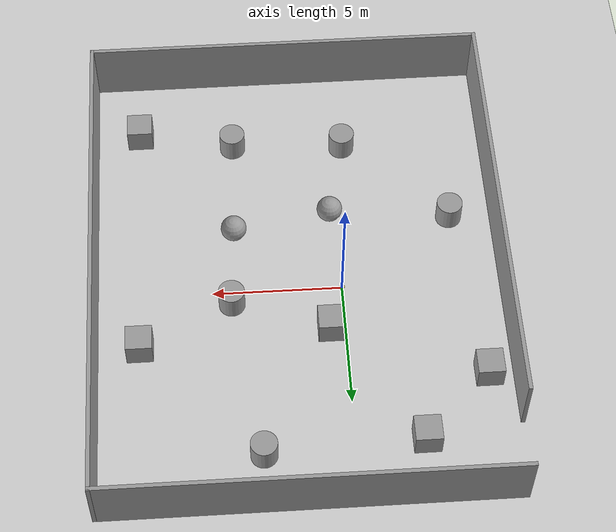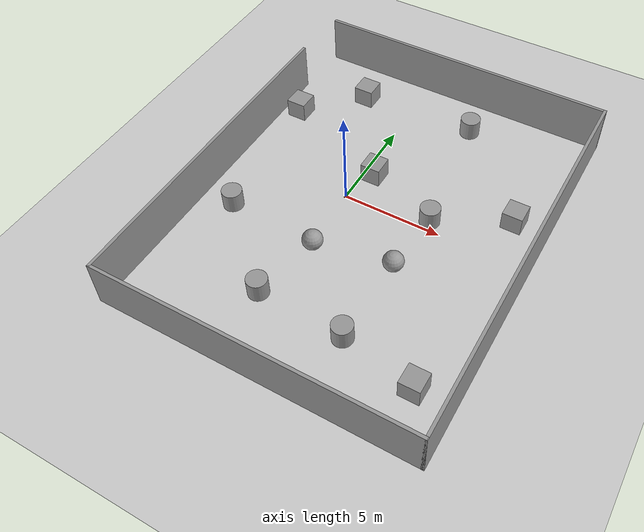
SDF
<sdf version="1.7">
 <world name="default">
  <light name="sun" type="directional">
   <pose>0 0 10 0 -0 0</pose>
   <diffuse>0.8 0.8 0.8 1</diffuse>
   <specular>0.2 0.2 0.2 1</specular>
   <attenuation>
    <range>1000</range>
    <constant>0.9</constant>
    <linear>0.01</linear>
    <quadratic>0.001</quadratic>
   </attenuation>
   <direction>-0.5 0.1 -0.9</direction>
   <spot><inner_angle>0</inner_angle><outer_angle>0</outer_angle><falloff>0</falloff></spot>
  </light>
  <model name="ground_plane">
   <static>1</static>
   <link name="link">
    <collision name="collision">
     <geometry><plane><normal>0 0 1</normal><size>100 100</size></plane></geometry>
     <surface>
      <contact><collide_bitmask>65535</collide_bitmask></contact>
      <friction><ode><mu>100</mu><mu2>50</mu2></ode></friction>
     </surface>
    </collision>
    <visual name="visual">
     <cast_shadows>0</cast_shadows>
     <geometry><plane><normal>0 0 1</normal><size>100 100</size></plane></geometry>
     <material>
      <script><uri>file://media/materials/scripts/gazebo.material</uri><name>Gazebo/Grey</name></script>
     </material>
    </visual>
   </link>
  </model>
  <gravity>0 0 -9.8</gravity>
  <magnetic_field>6e-06 2.3e-05 -4.2e-05</magnetic_field>
  <atmosphere type="adiabatic"/>
  <physics type="ode">
   <max_step_size>0.001</max_step_size>
   <real_time_factor>1</real_time_factor>
   <real_time_update_rate>1000</real_time_update_rate>
  </physics>
  <scene><ambient>0.4 0.4 0.4 1</ambient><background>0.7 0.7 0.7 1</background><shadows>1</shadows></scene>
  <spherical_coordinates>
   <surface_model>EARTH_WGS84</surface_model>
   <latitude_deg>0</latitude_deg>
   <longitude_deg>0</longitude_deg>
   <elevation>0</elevation>
   <heading_deg>0</heading_deg>
  </spherical_coordinates>
  <model name="unit_cylinder">
   <pose>-4.45445 -3.05346 0.5 -0 -0 -0</pose>
   <link name="link">
    <inertial>
     <mass>1</mass>
     <inertia><ixx>0.145833</ixx><ixy>0</ixy><ixz>0</ixz><iyy>0.145833</iyy><iyz>0</iyz><izz>0.125</izz></inertia>
    </inertial>
    <collision name="collision">
     <geometry><cylinder><radius>0.5</radius><length>1</length></cylinder></geometry>
    </collision>
    <visual name="visual">
     <geometry><cylinder><radius>0.5</radius><length>1</length></cylinder></geometry>
     <material>
      <script><name>Gazebo/Grey</name><uri>file://media/materials/scripts/gazebo.material</uri></script>
     </material>
    </visual>
   </link>
  </model>
  <model name="unit_box">
   <pose>-5.15346 4.14337 0.499995 1e-05 -0 0</pose>
   <link name="link">
    <inertial>
     <mass>1</mass>
     <inertia>
      <ixx>0.166667</ixx>
      <ixy>0</ixy>
      <ixz>0</ixz>
      <iyy>0.166667</iyy>
      <iyz>0</iyz>
      <izz>0.166667</izz>
     </inertia>
    </inertial>
    <collision name="collision"><geometry><box><size>1 1 1</size></box></geometry></collision>
    <visual name="visual">
     <geometry><box><size>1 1 1</size></box></geometry>
     <material>
      <script><name>Gazebo/Grey</name><uri>file://media/materials/scripts/gazebo.material</uri></script>
     </material>
    </visual>
   </link>
  </model>
  <model name="unit_cylinder_0">
   <pose>3.35061 7.03609 0.5 -0 -0 -0</pose>
   <link name="link">
    <inertial>
     <mass>1</mass>
     <inertia><ixx>0.145833</ixx><ixy>0</ixy><ixz>0</ixz><iyy>0.145833</iyy><iyz>0</iyz><izz>0.125</izz></inertia>
    </inertial>
    <collision name="collision">
     <geometry><cylinder><radius>0.5</radius><length>1</length></cylinder></geometry>
    </collision>
    <visual name="visual">
     <geometry><cylinder><radius>0.5</radius><length>1</length></cylinder></geometry>
     <material>
      <script><name>Gazebo/Grey</name><uri>file://media/materials/scripts/gazebo.material</uri></script>
     </material>
    </visual>
   </link>
  </model>
  <model name="unit_sphere">
   <pose>4.05255 -2.70726 0.5 0 -0 0</pose>
   <link name="link">
    <inertial>
     <mass>1</mass>
     <inertia><ixx>0.1</ixx><ixy>0</ixy><ixz>0</ixz><iyy>0.1</iyy><iyz>0</iyz><izz>0.1</izz></inertia>
    </inertial>
    <collision name="collision"><geometry><sphere><radius>0.5</radius></sphere></geometry></collision>
    <visual name="visual">
     <geometry><sphere><radius>0.5</radius></sphere></geometry>
     <material>
      <script><name>Gazebo/Grey</name><uri>file://media/materials/scripts/gazebo.material</uri></script>
     </material>
    </visual>
   </link>
  </model>
  <model name="unit_box_0">
   <pose>7.65712 -7.72028 0.499995 0 1e-05 0</pose>
   <link name="link">
    <inertial>
     <mass>1</mass>
     <inertia>
      <ixx>0.166667</ixx>
      <ixy>0</ixy>
      <ixz>0</ixz>
      <iyy>0.166667</iyy>
      <iyz>0</iyz>
      <izz>0.166667</izz>
     </inertia>
    </inertial>
    <collision name="collision"><geometry><box><size>1 1 1</size></box></geometry></collision>
    <visual name="visual">
     <geometry><box><size>1 1 1</size></box></geometry>
     <material>
      <script><name>Gazebo/Grey</name><uri>file://media/materials/scripts/gazebo.material</uri></script>
     </material>
    </visual>
   </link>
  </model>
  <model name="unit_box_1">
   <pose>0.554136 1.86875 0.499995 1e-05 -0 0</pose>
   <link name="link">
    <inertial>
     <mass>1</mass>
     <inertia>
      <ixx>0.166667</ixx>
      <ixy>0</ixy>
      <ixz>0</ixz>
      <iyy>0.166667</iyy>
      <iyz>0</iyz>
      <izz>0.166667</izz>
     </inertia>
    </inertial>
    <collision name="collision"><geometry><box><size>1 1 1</size></box></geometry></collision>
    <visual name="visual">
     <geometry><box><size>1 1 1</size></box></geometry>
     <material>
      <script><name>Gazebo/Grey</name><uri>file://media/materials/scripts/gazebo.material</uri></script>
     </material>
    </visual>
   </link>
  </model>
  <model name="unit_box_2">
   <pose>7.78432 2.35396 0.499995 0 1e-05 0</pose>
   <link name="link">
    <inertial>
     <mass>1</mass>
     <inertia>
      <ixx>0.166667</ixx>
      <ixy>0</ixy>
      <ixz>0</ixz>
      <iyy>0.166667</iyy>
      <iyz>0</iyz>
      <izz>0.166667</izz>
     </inertia>
    </inertial>
    <collision name="collision"><geometry><box><size>1 1 1</size></box></geometry></collision>
    <visual name="visual">
     <geometry><box><size>1 1 1</size></box></geometry>
     <material>
      <script><name>Gazebo/Grey</name><uri>file://media/materials/scripts/gazebo.material</uri></script>
     </material>
    </visual>
   </link>
  </model>
  <model name="unit_cylinder_1">
   <pose>-0.476972 -6.76464 0.5 0 -0 0</pose>
   <link name="link">
    <inertial>
     <mass>1</mass>
     <inertia><ixx>0.145833</ixx><ixy>0</ixy><ixz>0</ixz><iyy>0.145833</iyy><iyz>0</iyz><izz>0.125</izz></inertia>
    </inertial>
    <collision name="collision">
     <geometry><cylinder><radius>0.5</radius><length>1</length></cylinder></geometry>
    </collision>
    <visual name="visual">
     <geometry><cylinder><radius>0.5</radius><length>1</length></cylinder></geometry>
     <material>
      <script><name>Gazebo/Grey</name><uri>file://media/materials/scripts/gazebo.material</uri></script>
     </material>
    </visual>
   </link>
  </model>
  <model name="mycar">
   <link name="base_footprint">
    <inertial>
     <pose>0.00127 0 0.093611 0 -0 0</pose>
     <mass>0.63</mass>
     <inertia>
      <ixx>0.00557395</ixx>
      <ixy>0</ixy>
      <ixz>-1.11111e-05</ixz>
      <iyy>0.00563694</iyy>
      <iyz>0</iyz>
      <izz>0.00261003</izz>
     </inertia>
    </inertial>
    <collision name="base_footprint_fixed_joint_lump__base_link_collision">
     <pose>0 0 0.055 0 -0 0</pose>
     <geometry><cylinder><length>0.08</length><radius>0.1</radius></cylinder></geometry>
    </collision>
    <collision name="base_footprint_fixed_joint_lump__camera_collision_1">
     <pose>0.08 0 0.1075 0 -0 0</pose>
     <geometry><box><size>0.01 0.025 0.025</size></box></geometry>
    </collision>
    <collision name="base_footprint_fixed_joint_lump__support_collision_2">
     <pose>0 0 0.17 0 -0 0</pose>
     <geometry><cylinder><length>0.15</length><radius>0.01</radius></cylinder></geometry>
    </collision>
    <collision name="base_footprint_fixed_joint_lump__laser_collision_3">
     <pose>0 0 0.27 0 -0 0</pose>
     <geometry><cylinder><length>0.05</length><radius>0.03</radius></cylinder></geometry>
    </collision>
    <visual name="base_footprint_visual"><geometry><sphere><radius>0.001</radius></sphere></geometry></visual>
    <visual name="base_footprint_fixed_joint_lump__base_link_visual_1">
     <pose>0 0 0.055 0 -0 0</pose>
     <geometry><cylinder><length>0.08</length><radius>0.1</radius></cylinder></geometry>
     <material>
      <script><name>Gazebo/Yellow</name><uri>file://media/materials/scripts/gazebo.material</uri></script>
     </material>
    </visual>
    <visual name="base_footprint_fixed_joint_lump__camera_visual_2">
     <pose>0.08 0 0.1075 0 -0 0</pose>
     <geometry><box><size>0.01 0.025 0.025</size></box></geometry>
     <material>
      <script><name>Gazebo/Blue</name><uri>file://media/materials/scripts/gazebo.material</uri></script>
     </material>
    </visual>
    <visual name="base_footprint_fixed_joint_lump__support_visual_3">
     <pose>0 0 0.17 0 -0 0</pose>
     <geometry><cylinder><length>0.15</length><radius>0.01</radius></cylinder></geometry>
     <material>
      <script><name>Gazebo/White</name><uri>file://media/materials/scripts/gazebo.material</uri></script>
     </material>
    </visual>
    <visual name="base_footprint_fixed_joint_lump__laser_visual_4">
     <pose>0 0 0.27 0 -0 0</pose>
     <geometry><cylinder><length>0.05</length><radius>0.03</radius></cylinder></geometry>
     <material>
      <script><name>Gazebo/Black</name><uri>file://media/materials/scripts/gazebo.material</uri></script>
     </material>
    </visual>
    <sensor name="camera_node" type="camera">
     <update_rate>30</update_rate>
     <camera name="head">
      <horizontal_fov>1.39626</horizontal_fov>
      <image><width>1280</width><height>720</height><format>R8G8B8</format></image>
      <clip><near>0.02</near><far>300</far></clip>
      <noise><type>gaussian</type><mean>0</mean><stddev>0.007</stddev></noise>
     </camera>
     <plugin name="gazebo_camera" filename="libgazebo_ros_camera.so">
      <alwaysOn>1</alwaysOn>
      <updateRate>0.0</updateRate>
      <cameraName>/camera</cameraName>
      <imageTopicName>image_raw</imageTopicName>
      <cameraInfoTopicName>camera_info</cameraInfoTopicName>
      <frameName>camera</frameName>
      <hackBaseline>0.07</hackBaseline>
      <distortionK1>0.0</distortionK1>
      <distortionK2>0.0</distortionK2>
      <distortionK3>0.0</distortionK3>
      <distortionT1>0.0</distortionT1>
      <distortionT2>0.0</distortionT2>
      <robotNamespace>/</robotNamespace>
     </plugin>
     <pose>0.08 0 0.1075 0 -0 0</pose>
    </sensor>
    <sensor name="camera" type="depth">
     <always_on>1</always_on>
     <update_rate>20</update_rate>
     <camera>
      <horizontal_fov>1.0472</horizontal_fov>
      <image><format>R8G8B8</format><width>640</width><height>480</height></image>
      <clip><near>0.05</near><far>8</far></clip>
     </camera>
     <plugin name="kinect_camera_controller" filename="libgazebo_ros_openni_kinect.so">
      <cameraName>camera</cameraName>
      <alwaysOn>1</alwaysOn>
      <updateRate>10</updateRate>
      <imageTopicName>rgb/image_raw</imageTopicName>
      <depthImageTopicName>depth/image_raw</depthImageTopicName>
      <pointCloudTopicName>depth/points</pointCloudTopicName>
      <cameraInfoTopicName>rgb/camera_info</cameraInfoTopicName>
      <depthImageCameraInfoTopicName>depth/camera_info</depthImageCameraInfoTopicName>
      <frameName>support_depth</frameName>
      <baseline>0.1</baseline>
      <distortion_k1>0.0</distortion_k1>
      <distortion_k2>0.0</distortion_k2>
      <distortion_k3>0.0</distortion_k3>
      <distortion_t1>0.0</distortion_t1>
      <distortion_t2>0.0</distortion_t2>
      <pointCloudCutoff>0.4</pointCloudCutoff>
      <robotNamespace>/</robotNamespace>
     </plugin>
     <pose>0 0 0.17 0 -0 0</pose>
    </sensor>
    <sensor name="rplidar" type="ray">
     <visualize>1</visualize>
     <update_rate>5.5</update_rate>
     <ray>
      <scan>
       <horizontal>
        <samples>360</samples>
        <resolution>1</resolution>
        <min_angle>-3</min_angle>
        <max_angle>3</max_angle>
       </horizontal>
       <vertical><samples>1</samples><min_angle>0</min_angle><max_angle>0</max_angle></vertical>
      </scan>
      <range><min>0.1</min><max>30</max><resolution>0.01</resolution></range>
      <noise><type>gaussian</type><mean>0</mean><stddev>0.01</stddev></noise>
     </ray>
     <plugin name="gazebo_rplidar" filename="libgazebo_ros_laser.so">
      <topicName>/scan</topicName>
      <frameName>laser</frameName>
      <robotNamespace>/</robotNamespace>
     </plugin>
     <pose>0 0 0.27 0 -0 0</pose>
    </sensor>
   </link>
   <joint name="back_wheel2base_link" type="revolute">
    <pose relative_to="base_footprint">-0.0925 0 0.0075 0 -0 0</pose>
    <parent>base_footprint</parent>
    <child>back_wheel</child>
    <axis>
     <xyz>1 1 1</xyz>
     <limit><lower>-1e+16</lower><upper>1e+16</upper></limit>
     <dynamics><spring_reference>0</spring_reference><spring_stiffness>0</spring_stiffness></dynamics>
    </axis>
   </joint>
   <link name="back_wheel">
    <pose relative_to="back_wheel2base_link">0 0 0 0 -0 0</pose>
    <inertial>
     <mass>0.03</mass>
     <inertia>
      <ixx>6.75e-07</ixx>
      <ixy>0</ixy>
      <ixz>0</ixz>
      <iyy>6.75e-07</iyy>
      <iyz>0</iyz>
      <izz>6.75e-07</izz>
     </inertia>
    </inertial>
    <collision name="back_wheel_collision">
     <geometry><sphere><radius>0.0075</radius></sphere></geometry>
    </collision>
    <visual name="back_wheel_visual">
     <geometry><sphere><radius>0.0075</radius></sphere></geometry>
     <material>
      <script><name>Gazebo/Red</name><uri>file://media/materials/scripts/gazebo.material</uri></script>
     </material>
    </visual>
   </link>
   <joint name="front_wheel2base_link" type="revolute">
    <pose relative_to="base_footprint">0.0925 0 0.0075 0 -0 0</pose>
    <parent>base_footprint</parent>
    <child>front_wheel</child>
    <axis>
     <xyz>1 1 1</xyz>
     <limit><lower>-1e+16</lower><upper>1e+16</upper></limit>
     <dynamics><spring_reference>0</spring_reference><spring_stiffness>0</spring_stiffness></dynamics>
    </axis>
   </joint>
   <link name="front_wheel">
    <pose relative_to="front_wheel2base_link">0 0 0 0 -0 0</pose>
    <inertial>
     <mass>0.03</mass>
     <inertia>
      <ixx>6.75e-07</ixx>
      <ixy>0</ixy>
      <ixz>0</ixz>
      <iyy>6.75e-07</iyy>
      <iyz>0</iyz>
      <izz>6.75e-07</izz>
     </inertia>
    </inertial>
    <collision name="front_wheel_collision">
     <geometry><sphere><radius>0.0075</radius></sphere></geometry>
    </collision>
    <visual name="front_wheel_visual">
     <geometry><sphere><radius>0.0075</radius></sphere></geometry>
     <material>
      <script><name>Gazebo/Red</name><uri>file://media/materials/scripts/gazebo.material</uri></script>
     </material>
    </visual>
   </link>
   <joint name="left_wheel2base_link" type="revolute">
    <pose relative_to="base_footprint">0 0.1 0.0325 0 -0 0</pose>
    <parent>base_footprint</parent>
    <child>left_wheel</child>
    <axis>
     <xyz>0 1 0</xyz>
     <limit><lower>-1e+16</lower><upper>1e+16</upper></limit>
     <dynamics><spring_reference>0</spring_reference><spring_stiffness>0</spring_stiffness></dynamics>
    </axis>
   </joint>
   <link name="left_wheel">
    <pose relative_to="left_wheel2base_link">0 0 0 0 -0 0</pose>
    <inertial>
     <mass>0.05</mass>
     <inertia>
      <ixx>1.41406e-05</ixx>
      <ixy>0</ixy>
      <ixz>0</ixz>
      <iyy>1.41406e-05</iyy>
      <iyz>0</iyz>
      <izz>2.64063e-05</izz>
     </inertia>
    </inertial>
    <collision name="left_wheel_collision">
     <pose>0 0 0 1.5708 -0 0</pose>
     <geometry><cylinder><length>0.015</length><radius>0.0325</radius></cylinder></geometry>
    </collision>
    <visual name="left_wheel_visual">
     <pose>0 0 0 1.5708 -0 0</pose>
     <geometry><cylinder><length>0.015</length><radius>0.0325</radius></cylinder></geometry>
     <material>
      <script><name>Gazebo/Red</name><uri>file://media/materials/scripts/gazebo.material</uri></script>
     </material>
    </visual>
   </link>
   <joint name="right_wheel2base_link" type="revolute">
    <pose relative_to="base_footprint">0 -0.1 0.0325 0 -0 0</pose>
    <parent>base_footprint</parent>
    <child>right_wheel</child>
    <axis>
     <xyz>0 1 0</xyz>
     <limit><lower>-1e+16</lower><upper>1e+16</upper></limit>
     <dynamics><spring_reference>0</spring_reference><spring_stiffness>0</spring_stiffness></dynamics>
    </axis>
   </joint>
   <link name="right_wheel">
    <pose relative_to="right_wheel2base_link">0 0 0 0 -0 0</pose>
    <inertial>
     <mass>0.05</mass>
     <inertia>
      <ixx>1.41406e-05</ixx>
      <ixy>0</ixy>
      <ixz>0</ixz>
      <iyy>1.41406e-05</iyy>
      <iyz>0</iyz>
      <izz>2.64063e-05</izz>
     </inertia>
    </inertial>
    <collision name="right_wheel_collision">
     <pose>0 0 0 1.5708 -0 0</pose>
     <geometry><cylinder><length>0.015</length><radius>0.0325</radius></cylinder></geometry>
    </collision>
    <visual name="right_wheel_visual">
     <pose>0 0 0 1.5708 -0 0</pose>
     <geometry><cylinder><length>0.015</length><radius>0.0325</radius></cylinder></geometry>
     <material>
      <script><name>Gazebo/Red</name><uri>file://media/materials/scripts/gazebo.material</uri></script>
     </material>
    </visual>
   </link>
   <static>0</static>
   <plugin name="differential_drive_controller" filename="libgazebo_ros_diff_drive.so">
    <rosDebugLevel>Debug</rosDebugLevel>
    <publishWheelTF>1</publishWheelTF>
    <robotNamespace>/</robotNamespace>
    <publishTf>1</publishTf>
    <publishWheelJointState>1</publishWheelJointState>
    <alwaysOn>1</alwaysOn>
    <updateRate>100.0</updateRate>
    <legacyMode>1</legacyMode>
    <leftJoint>left_wheel2base_link</leftJoint>
    <rightJoint>right_wheel2base_link</rightJoint>
    <wheelSeparation>0.2</wheelSeparation>
    <wheelDiameter>0.065</wheelDiameter>
    <broadcastTF>1</broadcastTF>
    <wheelTorque>30</wheelTorque>
    <wheelAcceleration>1.8</wheelAcceleration>
    <commandTopic>cmd_vel</commandTopic>
    <odometryFrame>odom</odometryFrame>
    <odometryTopic>odom</odometryTopic>
    <robotBaseFrame>base_footprint</robotBaseFrame>
   </plugin>
   <pose>0.000305 -0.00028 0 0 0 -0.00317</pose>
  </model>
  <model name="myhouse">
   <pose>1.6467 -0.6267 0 0 -0 0</pose>
   <link name="Wall_3">
    <collision name="Wall_3_Collision">
     <geometry><box><size>16.75 0.15 2.5</size></box></geometry>
     <pose>0 0 1.25 0 -0 0</pose>
    </collision>
    <visual name="Wall_3_Visual">
     <pose>0 0 1.25 0 -0 0</pose>
     <geometry><box><size>16.75 0.15 2.5</size></box></geometry>
     <material>
      <script><uri>file://media/materials/scripts/gazebo.material</uri><name>Gazebo/Grey</name></script>
      <ambient>1 1 1 1</ambient>
     </material>
     <meta><layer>0</layer></meta>
    </visual>
    <pose>-7.8 -1.5 0 0 -0 -1.5708</pose>
   </link>
   <link name="Wall_4">
    <collision name="Wall_4_Collision">
     <geometry><box><size>15.75 0.15 2.5</size></box></geometry>
     <pose>0 0 1.25 0 -0 0</pose>
    </collision>
    <visual name="Wall_4_Visual">
     <pose>0 0 1.25 0 -0 0</pose>
     <geometry><box><size>15.75 0.15 2.5</size></box></geometry>
     <material>
      <script><uri>file://media/materials/scripts/gazebo.material</uri><name>Gazebo/Grey</name></script>
      <ambient>1 1 1 1</ambient>
     </material>
     <meta><layer>0</layer></meta>
    </visual>
    <pose>0 -9.8 0 0 -0 0</pose>
   </link>
   <link name="Wall_5">
    <collision name="Wall_5_Collision">
     <geometry><box><size>19.75 0.15 2.5</size></box></geometry>
     <pose>0 0 1.25 0 -0 0</pose>
    </collision>
    <visual name="Wall_5_Visual">
     <pose>0 0 1.25 0 -0 0</pose>
     <geometry><box><size>19.75 0.15 2.5</size></box></geometry>
     <material>
      <script><uri>file://media/materials/scripts/gazebo.material</uri><name>Gazebo/Grey</name></script>
      <ambient>1 1 1 1</ambient>
     </material>
     <meta><layer>0</layer></meta>
    </visual>
    <pose>7.8 -0 0 0 -0 1.5708</pose>
   </link>
   <link name="Wall_6">
    <collision name="Wall_6_Collision">
     <geometry><box><size>15.5 0.15 2.5</size></box></geometry>
     <pose>0 0 1.25 0 -0 0</pose>
    </collision>
    <visual name="Wall_6_Visual">
     <pose>0 0 1.25 0 -0 0</pose>
     <geometry><box><size>15.5 0.15 2.5</size></box></geometry>
     <material>
      <script><uri>file://media/materials/scripts/gazebo.material</uri><name>Gazebo/Grey</name></script>
      <ambient>1 1 1 1</ambient>
     </material>
     <meta><layer>0</layer></meta>
    </visual>
    <pose>0.125 9.8 0 0 -0 3.14159</pose>
   </link>
   <static>1</static>
  </model>
  <model name="unit_sphere_0">
   <pose>0.243091 -3.40949 0.5 0 -0 0</pose>
   <link name="link">
    <inertial>
     <mass>1</mass>
     <inertia><ixx>0.1</ixx><ixy>0</ixy><ixz>0</ixz><iyy>0.1</iyy><iyz>0</iyz><izz>0.1</izz></inertia>
    </inertial>
    <collision name="collision"><geometry><sphere><radius>0.5</radius></sphere></geometry></collision>
    <visual name="visual">
     <geometry><sphere><radius>0.5</radius></sphere></geometry>
     <material>
      <script><name>Gazebo/Grey</name><uri>file://media/materials/scripts/gazebo.material</uri></script>
     </material>
    </visual>
   </link>
  </model>
  <model name="unit_cylinder_2">
   <pose>4.25652 0.539319 0.5 0 -0 0</pose>
   <link name="link">
    <inertial>
     <mass>1</mass>
     <inertia><ixx>0.145833</ixx><ixy>0</ixy><ixz>0</ixz><iyy>0.145833</iyy><iyz>0</iyz><izz>0.125</izz></inertia>
    </inertial>
    <collision name="collision">
     <geometry><cylinder><radius>0.5</radius><length>1</length></cylinder></geometry>
    </collision>
    <visual name="visual">
     <geometry><cylinder><radius>0.5</radius><length>1</length></cylinder></geometry>
     <material>
      <script><name>Gazebo/Grey</name><uri>file://media/materials/scripts/gazebo.material</uri></script>
     </material>
    </visual>
   </link>
  </model>
  <model name="unit_cylinder_3">
   <pose>3.93765 -6.99495 0.5 0 -0 0</pose>
   <link name="link">
    <inertial>
     <mass>1</mass>
     <inertia><ixx>0.145833</ixx><ixy>0</ixy><ixz>0</ixz><iyy>0.145833</iyy><iyz>0</iyz><izz>0.125</izz></inertia>
    </inertial>
    <collision name="collision">
     <geometry><cylinder><radius>0.5</radius><length>1</length></cylinder></geometry>
    </collision>
    <visual name="visual">
     <geometry><cylinder><radius>0.5</radius><length>1</length></cylinder></geometry>
     <material>
      <script><name>Gazebo/Grey</name><uri>file://media/materials/scripts/gazebo.material</uri></script>
     </material>
    </visual>
   </link>
  </model>
  <model name="unit_box_3">
   <pose>-2.56991 6.76049 0.5 0 -0 0</pose>
   <link name="link">
    <inertial>
     <mass>1</mass>
     <inertia>
      <ixx>0.166667</ixx>
      <ixy>0</ixy>
      <ixz>0</ixz>
      <iyy>0.166667</iyy>
      <iyz>0</iyz>
      <izz>0.166667</izz>
     </inertia>
    </inertial>
    <collision name="collision"><geometry><box><size>1 1 1</size></box></geometry></collision>
    <visual name="visual">
     <geometry><box><size>1 1 1</size></box></geometry>
     <material>
      <script><name>Gazebo/Grey</name><uri>file://media/materials/scripts/gazebo.material</uri></script>
     </material>
    </visual>
   </link>
  </model>
 </world>
</sdf>
